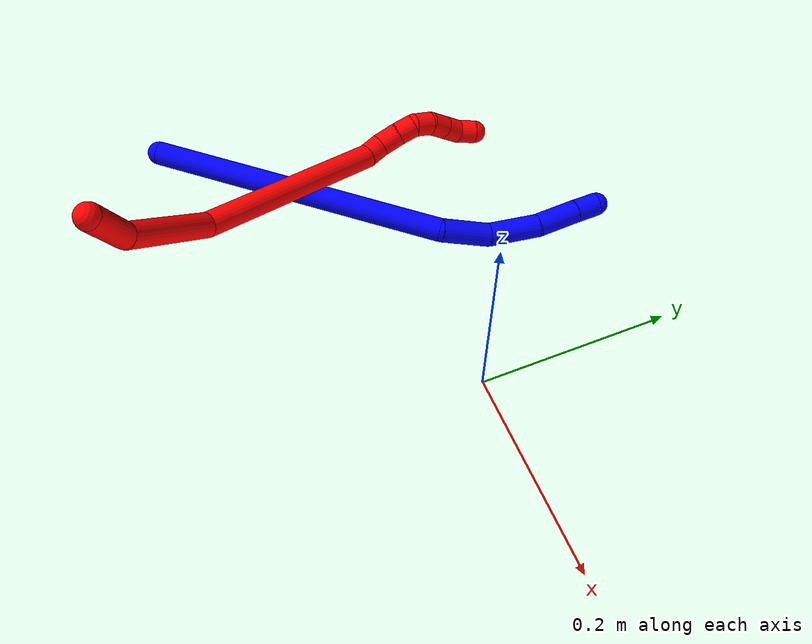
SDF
<sdf version="1.7">
 <world name="default">
  <plugin name="TubeGeneratorPlugin" filename="libtube_generator_plugin.so"/>
  <model name="photoneo_s_sensor">
   <static>1</static>
   <pose>0 0 2 1.57079 1.57079 3.14159</pose>
   <link name="link">
    <inertial><mass>0.1</mass></inertial>
    <sensor name="sensor" type="depth">
     <update_rate>30</update_rate>
     <camera>
      <horizontal_fov>1.22</horizontal_fov>
      <image><width>1920</width><height>1200</height><format>B8G8R8</format></image>
      <clip><near>0.1</near><far>4</far></clip>
      <depth_camera><output>points</output></depth_camera>
     </camera>
     <plugin name="camera_plugin" filename="libgazebo_ros_depth_camera.so">
      <baseline>0.2</baseline>
      <alwaysOn>1</alwaysOn>
      <updateRate>0.0</updateRate>
      <cameraName>camera_ir</cameraName>
      <imageTopicName>/camera/color/image_raw</imageTopicName>
      <cameraInfoTopicName>/camera/color/camera_info</cameraInfoTopicName>
      <depthImageTopicName>/camera/depth/image_raw</depthImageTopicName>
      <depthImageCameraInfoTopicName>/camera/depth/camera_info</depthImageCameraInfoTopicName>
      <pointCloudTopicName>/camera/depth/points</pointCloudTopicName>
      <frameName>fr_optical</frameName>
      <pointCloudCutoff>0.1</pointCloudCutoff>
      <pointCloudCutoffMax>2.0</pointCloudCutoffMax>
      <distortionK1>0</distortionK1>
      <distortionK2>0</distortionK2>
      <distortionK3>0</distortionK3>
      <distortionT1>0</distortionT1>
      <distortionT2>0</distortionT2>
      <CxPrime>0</CxPrime>
      <Cx>0</Cx>
      <Cy>0</Cy>
      <focalLength>0</focalLength>
      <hackBaseline>0</hackBaseline>
     </plugin>
    </sensor>
   </link>
  </model>
  <gravity>0 0 -9.8</gravity>
  <magnetic_field>6e-06 2.3e-05 -4.2e-05</magnetic_field>
  <atmosphere type="adiabatic"/>
  <physics name="default_physics" default="0" type="ode">
   <max_step_size>0.003</max_step_size>
   <real_time_factor>1</real_time_factor>
   <real_time_update_rate>1000</real_time_update_rate>
   <max_contacts>10000</max_contacts>
   <ode>
    <solver>
     <type>quick</type>
     <iters>100</iters>
     <sor>1.3</sor>
     <use_dynamic_moi_rescaling>0</use_dynamic_moi_rescaling>
    </solver>
    <constraints>
     <contact_max_correcting_vel>0</contact_max_correcting_vel>
     <contact_surface_layer>0.001</contact_surface_layer>
     <cfm>0</cfm>
     <erp>0.2</erp>
    </constraints>
   </ode>
  </physics>
  <scene><ambient>0.4 0.4 0.4 1</ambient><background>0.7 0.7 0.7 1</background><shadows>0</shadows></scene>
  <audio><device>default</device></audio>
  <spherical_coordinates>
   <surface_model>EARTH_WGS84</surface_model>
   <latitude_deg>0</latitude_deg>
   <longitude_deg>0</longitude_deg>
   <elevation>0</elevation>
   <heading_deg>0</heading_deg>
  </spherical_coordinates>
  <model name="bin">
   <static>1</static>
   <link name="bottom">
    <collision name="collision-bottom">
     <pose>0 0 -0.01 0 -0 0</pose>
     <geometry><box><size>0.8 0.6 0.02</size></box></geometry>
     <surface>
      <friction><ode><mu>100</mu><mu2>100</mu2></ode></friction>
      <contact><collide_bitmask>65535</collide_bitmask></contact>
     </surface>
    </collision>
   </link>
   <link name="west_wall">
    <collision name="collision-west_wall">
     <pose>-0.41 0 0.1 0 -0 0</pose>
     <geometry><box><size>0.02 0.6 0.2</size></box></geometry>
     <surface>
      <friction><ode><mu>100</mu><mu2>100</mu2></ode></friction>
      <contact><collide_bitmask>65535</collide_bitmask></contact>
     </surface>
    </collision>
   </link>
   <link name="east_wall">
    <collision name="collision-east_wall">
     <pose>0.41 0 0.1 0 -0 0</pose>
     <geometry><box><size>0.02 0.6 0.2</size></box></geometry>
     <surface>
      <friction><ode><mu>100</mu><mu2>100</mu2></ode></friction>
      <contact><collide_bitmask>65535</collide_bitmask></contact>
     </surface>
    </collision>
   </link>
   <link name="south_wall">
    <collision name="collision-south_wall">
     <pose>0 -0.31 0.1 0 -0 0</pose>
     <geometry><box><size>0.8 0.02 0.2</size></box></geometry>
     <surface>
      <friction><ode><mu>100</mu><mu2>100</mu2></ode></friction>
      <contact><collide_bitmask>65535</collide_bitmask></contact>
     </surface>
    </collision>
   </link>
   <link name="north_wall">
    <collision name="collision-north_wall">
     <pose>0 0.31 0.1 0 -0 0</pose>
     <geometry><box><size>0.8 0.02 0.2</size></box></geometry>
     <surface>
      <friction><ode><mu>100</mu><mu2>100</mu2></ode></friction>
      <contact><collide_bitmask>65535</collide_bitmask></contact>
     </surface>
    </collision>
   </link>
  </model>
  <model name="1">
   <static>0</static>
   <link name="1">
    <collision name="collision-cylinder-e_1_1_4">
     <pose>0.005962 0.070987 -0.142901 -2.68054 0.037348 -0.158815</pose>
     <geometry><cylinder><radius>0.0125</radius><length>0.319345</length></cylinder></geometry>
     <surface>
      <friction><ode><mu>1.16</mu><mu2>1.16</mu2><slip1>0</slip1><slip2>0</slip2></ode></friction>
      <contact><ode><kp>1e+06</kp><kd>1</kd><max_vel>0</max_vel><min_depth>0.001</min_depth></ode></contact>
     </surface>
    </collision>
    <visual name="visual-cylinder-e_1_1_4">
     <pose>0.005962 0.070987 -0.142901 -2.68054 0.037348 -0.158815</pose>
     <geometry><cylinder><radius>0.0125</radius><length>0.319345</length></cylinder></geometry>
     <material><ambient>0 0 1 1</ambient></material>
    </visual>
    <collision name="collision-cylinder-e_2_4_5">
     <pose>0.014383 0.16355 -0.301829 -2.20972 0.091234 -0.181057</pose>
     <geometry><cylinder><radius>0.0125</radius><length>0.053979</length></cylinder></geometry>
     <surface>
      <friction><ode><mu>1.16</mu><mu2>1.16</mu2><slip1>0</slip1><slip2>0</slip2></ode></friction>
      <contact><ode><kp>1e+06</kp><kd>1</kd><max_vel>0</max_vel><min_depth>0.001</min_depth></ode></contact>
     </surface>
    </collision>
    <visual name="visual-cylinder-e_2_4_5">
     <pose>0.014383 0.16355 -0.301829 -2.20972 0.091234 -0.181057</pose>
     <geometry><cylinder><radius>0.0125</radius><length>0.053979</length></cylinder></geometry>
     <material><ambient>0 0 1 1</ambient></material>
    </visual>
    <collision name="collision-cylinder-e_3_5_6">
     <pose>0.027396 0.204624 -0.334011 -2.26264 0.394932 -0.804694</pose>
     <geometry><cylinder><radius>0.0125</radius><length>0.054864</length></cylinder></geometry>
     <surface>
      <friction><ode><mu>1.16</mu><mu2>1.16</mu2><slip1>0</slip1><slip2>0</slip2></ode></friction>
      <contact><ode><kp>1e+06</kp><kd>1</kd><max_vel>0</max_vel><min_depth>0.001</min_depth></ode></contact>
     </surface>
    </collision>
    <visual name="visual-cylinder-e_3_5_6">
     <pose>0.027396 0.204624 -0.334011 -2.26264 0.394932 -0.804694</pose>
     <geometry><cylinder><radius>0.0125</radius><length>0.054864</length></cylinder></geometry>
     <material><ambient>0 0 1 1</ambient></material>
    </visual>
    <collision name="collision-cylinder-e_4_6_7">
     <pose>0.04926 0.241179 -0.360434 -2.11276 0.516567 -0.874523</pose>
     <geometry><cylinder><radius>0.0125</radius><length>0.045794</length></cylinder></geometry>
     <surface>
      <friction><ode><mu>1.16</mu><mu2>1.16</mu2><slip1>0</slip1><slip2>0</slip2></ode></friction>
      <contact><ode><kp>1e+06</kp><kd>1</kd><max_vel>0</max_vel><min_depth>0.001</min_depth></ode></contact>
     </surface>
    </collision>
    <visual name="visual-cylinder-e_4_6_7">
     <pose>0.04926 0.241179 -0.360434 -2.11276 0.516567 -0.874523</pose>
     <geometry><cylinder><radius>0.0125</radius><length>0.045794</length></cylinder></geometry>
     <material><ambient>0 0 1 1</ambient></material>
    </visual>
    <collision name="collision-cylinder-e_5_7_2">
     <pose>0.066752 0.267961 -0.376736 -2.12596 0.495379 -0.85305</pose>
     <geometry><cylinder><radius>0.0125</radius><length>0.026017</length></cylinder></geometry>
     <surface>
      <friction><ode><mu>1.16</mu><mu2>1.16</mu2><slip1>0</slip1><slip2>0</slip2></ode></friction>
      <contact><ode><kp>1e+06</kp><kd>1</kd><max_vel>0</max_vel><min_depth>0.001</min_depth></ode></contact>
     </surface>
    </collision>
    <visual name="visual-cylinder-e_5_7_2">
     <pose>0.066752 0.267961 -0.376736 -2.12596 0.495379 -0.85305</pose>
     <geometry><cylinder><radius>0.0125</radius><length>0.026017</length></cylinder></geometry>
     <material><ambient>0 0 1 1</ambient></material>
    </visual>
    <collision name="collision-sphere-2">
     <pose>0.072936 0.277687 -0.382768 0 -0 0</pose>
     <geometry><sphere><radius>0.0125</radius></sphere></geometry>
     <surface>
      <friction><ode><mu>1.16</mu><mu2>1.16</mu2><slip1>0</slip1><slip2>0</slip2></ode></friction>
      <contact><ode><kp>1e+06</kp><kd>1</kd><max_vel>0</max_vel><min_depth>0.001</min_depth></ode></contact>
     </surface>
    </collision>
    <visual name="visual-sphere-2">
     <pose>0.072936 0.277687 -0.382768 0 -0 0</pose>
     <geometry><sphere><radius>0.0125</radius></sphere></geometry>
     <material><ambient>0 0 1 1</ambient></material>
    </visual>
    <collision name="collision-sphere-7">
     <pose>0.060568 0.258235 -0.370703 0 -0 0</pose>
     <geometry><sphere><radius>0.0125</radius></sphere></geometry>
     <surface>
      <friction><ode><mu>1.16</mu><mu2>1.16</mu2><slip1>0</slip1><slip2>0</slip2></ode></friction>
      <contact><ode><kp>1e+06</kp><kd>1</kd><max_vel>0</max_vel><min_depth>0.001</min_depth></ode></contact>
     </surface>
    </collision>
    <visual name="visual-sphere-7">
     <pose>0.060568 0.258235 -0.370703 0 -0 0</pose>
     <geometry><sphere><radius>0.0125</radius></sphere></geometry>
     <material><ambient>0 0 1 1</ambient></material>
    </visual>
    <collision name="collision-sphere-6">
     <pose>0.037951 0.224122 -0.350164 0 -0 0</pose>
     <geometry><sphere><radius>0.0125</radius></sphere></geometry>
     <surface>
      <friction><ode><mu>1.16</mu><mu2>1.16</mu2><slip1>0</slip1><slip2>0</slip2></ode></friction>
      <contact><ode><kp>1e+06</kp><kd>1</kd><max_vel>0</max_vel><min_depth>0.001</min_depth></ode></contact>
     </surface>
    </collision>
    <visual name="visual-sphere-6">
     <pose>0.037951 0.224122 -0.350164 0 -0 0</pose>
     <geometry><sphere><radius>0.0125</radius></sphere></geometry>
     <material><ambient>0 0 1 1</ambient></material>
    </visual>
    <collision name="collision-sphere-5">
     <pose>0.016842 0.185125 -0.317857 0 -0 0</pose>
     <geometry><sphere><radius>0.0125</radius></sphere></geometry>
     <surface>
      <friction><ode><mu>1.16</mu><mu2>1.16</mu2><slip1>0</slip1><slip2>0</slip2></ode></friction>
      <contact><ode><kp>1e+06</kp><kd>1</kd><max_vel>0</max_vel><min_depth>0.001</min_depth></ode></contact>
     </surface>
    </collision>
    <visual name="visual-sphere-5">
     <pose>0.016842 0.185125 -0.317857 0 -0 0</pose>
     <geometry><sphere><radius>0.0125</radius></sphere></geometry>
     <material><ambient>0 0 1 1</ambient></material>
    </visual>
    <collision name="collision-sphere-1">
     <geometry><sphere><radius>0.0125</radius></sphere></geometry>
     <surface>
      <friction><ode><mu>1.16</mu><mu2>1.16</mu2><slip1>0</slip1><slip2>0</slip2></ode></friction>
      <contact><ode><kp>1e+06</kp><kd>1</kd><max_vel>0</max_vel><min_depth>0.001</min_depth></ode></contact>
     </surface>
    </collision>
    <visual name="visual-sphere-1">
     <geometry><sphere><radius>0.0125</radius></sphere></geometry>
     <material><ambient>0 0 1 1</ambient></material>
    </visual>
    <collision name="collision-sphere-4">
     <pose>0.011924 0.141974 -0.285801 0 -0 0</pose>
     <geometry><sphere><radius>0.0125</radius></sphere></geometry>
     <surface>
      <friction><ode><mu>1.16</mu><mu2>1.16</mu2><slip1>0</slip1><slip2>0</slip2></ode></friction>
      <contact><ode><kp>1e+06</kp><kd>1</kd><max_vel>0</max_vel><min_depth>0.001</min_depth></ode></contact>
     </surface>
    </collision>
    <visual name="visual-sphere-4">
     <pose>0.011924 0.141974 -0.285801 0 -0 0</pose>
     <geometry><sphere><radius>0.0125</radius></sphere></geometry>
     <material><ambient>0 0 1 1</ambient></material>
    </visual>
    <inertial>
     <pose>0.016352 0.121481 -0.21312 0 -0 0</pose>
     <mass>0.5</mass>
     <inertia>
      <ixx>0.002276</ixx>
      <ixy>0</ixy>
      <ixz>0</ixz>
      <iyy>-0.002847</iyy>
      <iyz>0</iyz>
      <izz>-0.00139</izz>
     </inertia>
    </inertial>
   </link>
   <pose>-0.370275 -0.218178 0.047693 -1.88586 -0.899579 2.31753</pose>
  </model>
  <model name="2">
   <static>0</static>
   <link name="2">
    <collision name="collision-cylinder-e_1_1_4">
     <pose>-0.006538 -0.00413 -0.024789 2.97649 -0.254527 -1.9936</pose>
     <geometry><cylinder><radius>0.0125</radius><length>0.051935</length></cylinder></geometry>
     <surface>
      <friction><ode><mu>1.16</mu><mu2>1.16</mu2><slip1>0</slip1><slip2>0</slip2></ode></friction>
      <contact><ode><kp>1e+06</kp><kd>1</kd><max_vel>0</max_vel><min_depth>0.001</min_depth></ode></contact>
     </surface>
    </collision>
    <visual name="visual-cylinder-e_1_1_4">
     <pose>-0.006538 -0.00413 -0.024789 2.97649 -0.254527 -1.9936</pose>
     <geometry><cylinder><radius>0.0125</radius><length>0.051935</length></cylinder></geometry>
     <material><ambient>1 0 0 1</ambient></material>
    </visual>
    <collision name="collision-cylinder-e_2_4_5">
     <pose>-0.034316 0.005182 -0.094575 -2.85129 -0.424737 1.95005</pose>
     <geometry><cylinder><radius>0.0125</radius><length>0.103083</length></cylinder></geometry>
     <surface>
      <friction><ode><mu>1.16</mu><mu2>1.16</mu2><slip1>0</slip1><slip2>0</slip2></ode></friction>
      <contact><ode><kp>1e+06</kp><kd>1</kd><max_vel>0</max_vel><min_depth>0.001</min_depth></ode></contact>
     </surface>
    </collision>
    <visual name="visual-cylinder-e_2_4_5">
     <pose>-0.034316 0.005182 -0.094575 -2.85129 -0.424737 1.95005</pose>
     <geometry><cylinder><radius>0.0125</radius><length>0.103083</length></cylinder></geometry>
     <material><ambient>1 0 0 1</ambient></material>
    </visual>
    <collision name="collision-cylinder-e_3_5_6">
     <pose>-0.087211 0.088252 -0.204786 -2.32347 -0.32039 0.713538</pose>
     <geometry><cylinder><radius>0.0125</radius><length>0.201027</length></cylinder></geometry>
     <surface>
      <friction><ode><mu>1.16</mu><mu2>1.16</mu2><slip1>0</slip1><slip2>0</slip2></ode></friction>
      <contact><ode><kp>1e+06</kp><kd>1</kd><max_vel>0</max_vel><min_depth>0.001</min_depth></ode></contact>
     </surface>
    </collision>
    <visual name="visual-cylinder-e_3_5_6">
     <pose>-0.087211 0.088252 -0.204786 -2.32347 -0.32039 0.713538</pose>
     <geometry><cylinder><radius>0.0125</radius><length>0.201027</length></cylinder></geometry>
     <material><ambient>1 0 0 1</ambient></material>
    </visual>
    <collision name="collision-cylinder-e_4_6_7">
     <pose>-0.123077 0.165939 -0.274326 -2.06355 -0.431504 0.702479</pose>
     <geometry><cylinder><radius>0.0125</radius><length>0.020138</length></cylinder></geometry>
     <surface>
      <friction><ode><mu>1.16</mu><mu2>1.16</mu2><slip1>0</slip1><slip2>0</slip2></ode></friction>
      <contact><ode><kp>1e+06</kp><kd>1</kd><max_vel>0</max_vel><min_depth>0.001</min_depth></ode></contact>
     </surface>
    </collision>
    <visual name="visual-cylinder-e_4_6_7">
     <pose>-0.123077 0.165939 -0.274326 -2.06355 -0.431504 0.702479</pose>
     <geometry><cylinder><radius>0.0125</radius><length>0.020138</length></cylinder></geometry>
     <material><ambient>1 0 0 1</ambient></material>
    </visual>
    <collision name="collision-cylinder-e_5_7_8">
     <pose>-0.128178 0.185409 -0.281507 -1.81589 -0.075448 0.096614</pose>
     <geometry><cylinder><radius>0.0125</radius><length>0.023594</length></cylinder></geometry>
     <surface>
      <friction><ode><mu>1.16</mu><mu2>1.16</mu2><slip1>0</slip1><slip2>0</slip2></ode></friction>
      <contact><ode><kp>1e+06</kp><kd>1</kd><max_vel>0</max_vel><min_depth>0.001</min_depth></ode></contact>
     </surface>
    </collision>
    <visual name="visual-cylinder-e_5_7_8">
     <pose>-0.128178 0.185409 -0.281507 -1.81589 -0.075448 0.096614</pose>
     <geometry><cylinder><radius>0.0125</radius><length>0.023594</length></cylinder></geometry>
     <material><ambient>1 0 0 1</ambient></material>
    </visual>
    <collision name="collision-cylinder-e_6_8_9">
     <pose>-0.129384 0.206409 -0.287274 -1.86565 -0.031603 0.042624</pose>
     <geometry><cylinder><radius>0.0125</radius><length>0.020052</length></cylinder></geometry>
     <surface>
      <friction><ode><mu>1.16</mu><mu2>1.16</mu2><slip1>0</slip1><slip2>0</slip2></ode></friction>
      <contact><ode><kp>1e+06</kp><kd>1</kd><max_vel>0</max_vel><min_depth>0.001</min_depth></ode></contact>
     </surface>
    </collision>
    <visual name="visual-cylinder-e_6_8_9">
     <pose>-0.129384 0.206409 -0.287274 -1.86565 -0.031603 0.042624</pose>
     <geometry><cylinder><radius>0.0125</radius><length>0.020052</length></cylinder></geometry>
     <material><ambient>1 0 0 1</ambient></material>
    </visual>
    <collision name="collision-cylinder-e_7_9_10">
     <pose>-0.130014 0.223034 -0.297309 -2.36232 -0.031334 0.076276</pose>
     <geometry><cylinder><radius>0.0125</radius><length>0.020033</length></cylinder></geometry>
     <surface>
      <friction><ode><mu>1.16</mu><mu2>1.16</mu2><slip1>0</slip1><slip2>0</slip2></ode></friction>
      <contact><ode><kp>1e+06</kp><kd>1</kd><max_vel>0</max_vel><min_depth>0.001</min_depth></ode></contact>
     </surface>
    </collision>
    <visual name="visual-cylinder-e_7_9_10">
     <pose>-0.130014 0.223034 -0.297309 -2.36232 -0.031334 0.076276</pose>
     <geometry><cylinder><radius>0.0125</radius><length>0.020033</length></cylinder></geometry>
     <material><ambient>1 0 0 1</ambient></material>
    </visual>
    <collision name="collision-cylinder-e_8_10_11">
     <pose>-0.130102 0.234073 -0.313667 -2.73257 0.022464 -0.108207</pose>
     <geometry><cylinder><radius>0.0125</radius><length>0.020137</length></cylinder></geometry>
     <surface>
      <friction><ode><mu>1.16</mu><mu2>1.16</mu2><slip1>0</slip1><slip2>0</slip2></ode></friction>
      <contact><ode><kp>1e+06</kp><kd>1</kd><max_vel>0</max_vel><min_depth>0.001</min_depth></ode></contact>
     </surface>
    </collision>
    <visual name="visual-cylinder-e_8_10_11">
     <pose>-0.130102 0.234073 -0.313667 -2.73257 0.022464 -0.108207</pose>
     <geometry><cylinder><radius>0.0125</radius><length>0.020137</length></cylinder></geometry>
     <material><ambient>1 0 0 1</ambient></material>
    </visual>
    <collision name="collision-cylinder-e_9_11_12">
     <pose>-0.129414 0.242128 -0.332033 -2.72391 0.046223 -0.217284</pose>
     <geometry><cylinder><radius>0.0125</radius><length>0.02</length></cylinder></geometry>
     <surface>
      <friction><ode><mu>1.16</mu><mu2>1.16</mu2><slip1>0</slip1><slip2>0</slip2></ode></friction>
      <contact><ode><kp>1e+06</kp><kd>1</kd><max_vel>0</max_vel><min_depth>0.001</min_depth></ode></contact>
     </surface>
    </collision>
    <visual name="visual-cylinder-e_9_11_12">
     <pose>-0.129414 0.242128 -0.332033 -2.72391 0.046223 -0.217284</pose>
     <geometry><cylinder><radius>0.0125</radius><length>0.02</length></cylinder></geometry>
     <material><ambient>1 0 0 1</ambient></material>
    </visual>
    <collision name="collision-cylinder-e_10_12_2">
     <pose>-0.126433 0.253354 -0.347659 -2.30662 0.254621 -0.561898</pose>
     <geometry><cylinder><radius>0.0125</radius><length>0.02</length></cylinder></geometry>
     <surface>
      <friction><ode><mu>1.16</mu><mu2>1.16</mu2><slip1>0</slip1><slip2>0</slip2></ode></friction>
      <contact><ode><kp>1e+06</kp><kd>1</kd><max_vel>0</max_vel><min_depth>0.001</min_depth></ode></contact>
     </surface>
    </collision>
    <visual name="visual-cylinder-e_10_12_2">
     <pose>-0.126433 0.253354 -0.347659 -2.30662 0.254621 -0.561898</pose>
     <geometry><cylinder><radius>0.0125</radius><length>0.02</length></cylinder></geometry>
     <material><ambient>1 0 0 1</ambient></material>
    </visual>
    <collision name="collision-sphere-2">
     <pose>-0.123914 0.260528 -0.354155 0 -0 0</pose>
     <geometry><sphere><radius>0.0125</radius></sphere></geometry>
     <surface>
      <friction><ode><mu>1.16</mu><mu2>1.16</mu2><slip1>0</slip1><slip2>0</slip2></ode></friction>
      <contact><ode><kp>1e+06</kp><kd>1</kd><max_vel>0</max_vel><min_depth>0.001</min_depth></ode></contact>
     </surface>
    </collision>
    <visual name="visual-sphere-2">
     <pose>-0.123914 0.260528 -0.354155 0 -0 0</pose>
     <geometry><sphere><radius>0.0125</radius></sphere></geometry>
     <material><ambient>1 0 0 1</ambient></material>
    </visual>
    <collision name="collision-sphere-12">
     <pose>-0.128952 0.24618 -0.341164 0 -0 0</pose>
     <geometry><sphere><radius>0.0125</radius></sphere></geometry>
     <surface>
      <friction><ode><mu>1.16</mu><mu2>1.16</mu2><slip1>0</slip1><slip2>0</slip2></ode></friction>
      <contact><ode><kp>1e+06</kp><kd>1</kd><max_vel>0</max_vel><min_depth>0.001</min_depth></ode></contact>
     </surface>
    </collision>
    <visual name="visual-sphere-12">
     <pose>-0.128952 0.24618 -0.341164 0 -0 0</pose>
     <geometry><sphere><radius>0.0125</radius></sphere></geometry>
     <material><ambient>1 0 0 1</ambient></material>
    </visual>
    <collision name="collision-sphere-11">
     <pose>-0.129876 0.238076 -0.322902 0 -0 0</pose>
     <geometry><sphere><radius>0.0125</radius></sphere></geometry>
     <surface>
      <friction><ode><mu>1.16</mu><mu2>1.16</mu2><slip1>0</slip1><slip2>0</slip2></ode></friction>
      <contact><ode><kp>1e+06</kp><kd>1</kd><max_vel>0</max_vel><min_depth>0.001</min_depth></ode></contact>
     </surface>
    </collision>
    <visual name="visual-sphere-11">
     <pose>-0.129876 0.238076 -0.322902 0 -0 0</pose>
     <geometry><sphere><radius>0.0125</radius></sphere></geometry>
     <material><ambient>1 0 0 1</ambient></material>
    </visual>
    <collision name="collision-sphere-10">
     <pose>-0.130328 0.230069 -0.304431 0 -0 0</pose>
     <geometry><sphere><radius>0.0125</radius></sphere></geometry>
     <surface>
      <friction><ode><mu>1.16</mu><mu2>1.16</mu2><slip1>0</slip1><slip2>0</slip2></ode></friction>
      <contact><ode><kp>1e+06</kp><kd>1</kd><max_vel>0</max_vel><min_depth>0.001</min_depth></ode></contact>
     </surface>
    </collision>
    <visual name="visual-sphere-10">
     <pose>-0.130328 0.230069 -0.304431 0 -0 0</pose>
     <geometry><sphere><radius>0.0125</radius></sphere></geometry>
     <material><ambient>1 0 0 1</ambient></material>
    </visual>
    <collision name="collision-sphere-9">
     <pose>-0.129701 0.215998 -0.290186 0 -0 0</pose>
     <geometry><sphere><radius>0.0125</radius></sphere></geometry>
     <surface>
      <friction><ode><mu>1.16</mu><mu2>1.16</mu2><slip1>0</slip1><slip2>0</slip2></ode></friction>
      <contact><ode><kp>1e+06</kp><kd>1</kd><max_vel>0</max_vel><min_depth>0.001</min_depth></ode></contact>
     </surface>
    </collision>
    <visual name="visual-sphere-9">
     <pose>-0.129701 0.215998 -0.290186 0 -0 0</pose>
     <geometry><sphere><radius>0.0125</radius></sphere></geometry>
     <material><ambient>1 0 0 1</ambient></material>
    </visual>
    <collision name="collision-sphere-4">
     <pose>-0.013077 -0.008261 -0.049578 0 -0 0</pose>
     <geometry><sphere><radius>0.0125</radius></sphere></geometry>
     <surface>
      <friction><ode><mu>1.16</mu><mu2>1.16</mu2><slip1>0</slip1><slip2>0</slip2></ode></friction>
      <contact><ode><kp>1e+06</kp><kd>1</kd><max_vel>0</max_vel><min_depth>0.001</min_depth></ode></contact>
     </surface>
    </collision>
    <visual name="visual-sphere-4">
     <pose>-0.013077 -0.008261 -0.049578 0 -0 0</pose>
     <geometry><sphere><radius>0.0125</radius></sphere></geometry>
     <material><ambient>1 0 0 1</ambient></material>
    </visual>
    <collision name="collision-sphere-1">
     <geometry><sphere><radius>0.0125</radius></sphere></geometry>
     <surface>
      <friction><ode><mu>1.16</mu><mu2>1.16</mu2><slip1>0</slip1><slip2>0</slip2></ode></friction>
      <contact><ode><kp>1e+06</kp><kd>1</kd><max_vel>0</max_vel><min_depth>0.001</min_depth></ode></contact>
     </surface>
    </collision>
    <visual name="visual-sphere-1">
     <geometry><sphere><radius>0.0125</radius></sphere></geometry>
     <material><ambient>1 0 0 1</ambient></material>
    </visual>
    <collision name="collision-sphere-8">
     <pose>-0.129067 0.196821 -0.284362 0 -0 0</pose>
     <geometry><sphere><radius>0.0125</radius></sphere></geometry>
     <surface>
      <friction><ode><mu>1.16</mu><mu2>1.16</mu2><slip1>0</slip1><slip2>0</slip2></ode></friction>
      <contact><ode><kp>1e+06</kp><kd>1</kd><max_vel>0</max_vel><min_depth>0.001</min_depth></ode></contact>
     </surface>
    </collision>
    <visual name="visual-sphere-8">
     <pose>-0.129067 0.196821 -0.284362 0 -0 0</pose>
     <geometry><sphere><radius>0.0125</radius></sphere></geometry>
     <material><ambient>1 0 0 1</ambient></material>
    </visual>
    <collision name="collision-sphere-5">
     <pose>-0.055555 0.018624 -0.139572 0 -0 0</pose>
     <geometry><sphere><radius>0.0125</radius></sphere></geometry>
     <surface>
      <friction><ode><mu>1.16</mu><mu2>1.16</mu2><slip1>0</slip1><slip2>0</slip2></ode></friction>
      <contact><ode><kp>1e+06</kp><kd>1</kd><max_vel>0</max_vel><min_depth>0.001</min_depth></ode></contact>
     </surface>
    </collision>
    <visual name="visual-sphere-5">
     <pose>-0.055555 0.018624 -0.139572 0 -0 0</pose>
     <geometry><sphere><radius>0.0125</radius></sphere></geometry>
     <material><ambient>1 0 0 1</ambient></material>
    </visual>
    <collision name="collision-sphere-6">
     <pose>-0.118866 0.15788 -0.27 0 -0 0</pose>
     <geometry><sphere><radius>0.0125</radius></sphere></geometry>
     <surface>
      <friction><ode><mu>1.16</mu><mu2>1.16</mu2><slip1>0</slip1><slip2>0</slip2></ode></friction>
      <contact><ode><kp>1e+06</kp><kd>1</kd><max_vel>0</max_vel><min_depth>0.001</min_depth></ode></contact>
     </surface>
    </collision>
    <visual name="visual-sphere-6">
     <pose>-0.118866 0.15788 -0.27 0 -0 0</pose>
     <geometry><sphere><radius>0.0125</radius></sphere></geometry>
     <material><ambient>1 0 0 1</ambient></material>
    </visual>
    <collision name="collision-sphere-7">
     <pose>-0.127289 0.173997 -0.278653 0 -0 0</pose>
     <geometry><sphere><radius>0.0125</radius></sphere></geometry>
     <surface>
      <friction><ode><mu>1.16</mu><mu2>1.16</mu2><slip1>0</slip1><slip2>0</slip2></ode></friction>
      <contact><ode><kp>1e+06</kp><kd>1</kd><max_vel>0</max_vel><min_depth>0.001</min_depth></ode></contact>
     </surface>
    </collision>
    <visual name="visual-sphere-7">
     <pose>-0.127289 0.173997 -0.278653 0 -0 0</pose>
     <geometry><sphere><radius>0.0125</radius></sphere></geometry>
     <material><ambient>1 0 0 1</ambient></material>
    </visual>
    <inertial>
     <pose>-0.079695 0.098015 -0.191994 0 -0 0</pose>
     <mass>0.5</mass>
     <inertia>
      <ixx>0.000948</ixx>
      <ixy>0</ixy>
      <ixz>0</ixz>
      <iyy>0.000308</iyy>
      <iyz>0</iyz>
      <izz>-0.000274</izz>
     </inertia>
    </inertial>
   </link>
   <pose>-0.163258 -0.287531 0.194202 0.56027 -0.018004 0.00391</pose>
  </model>
 </world>
</sdf>
